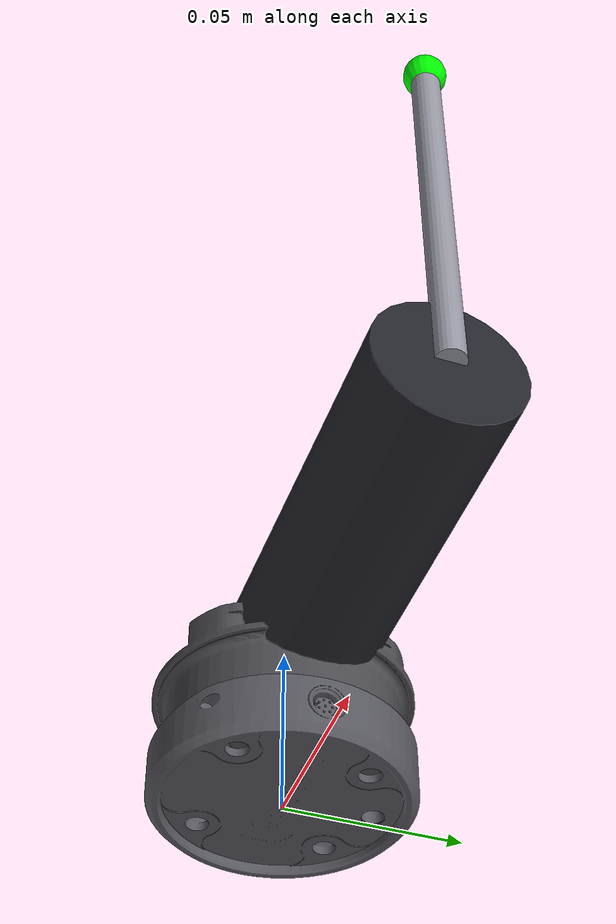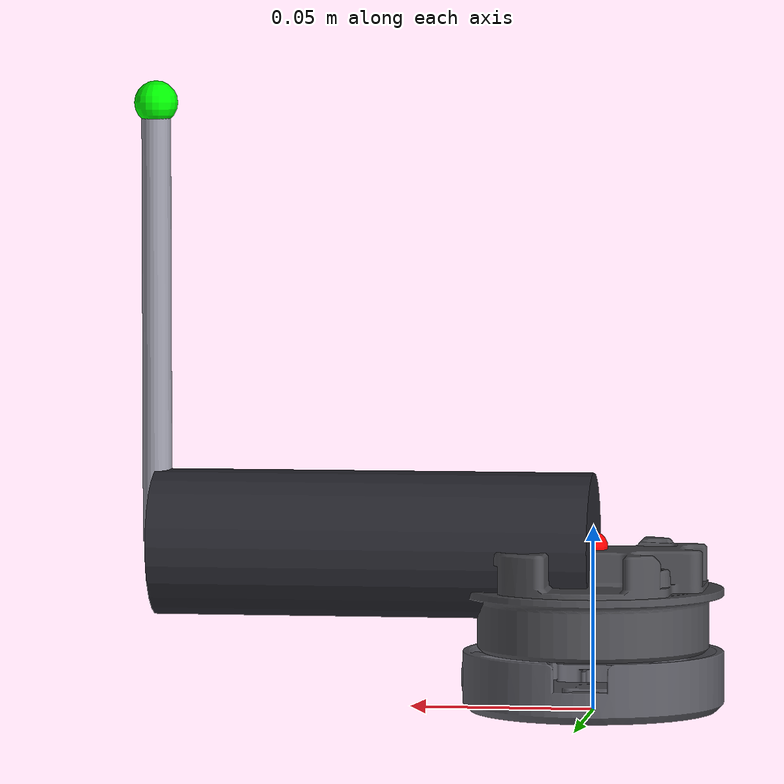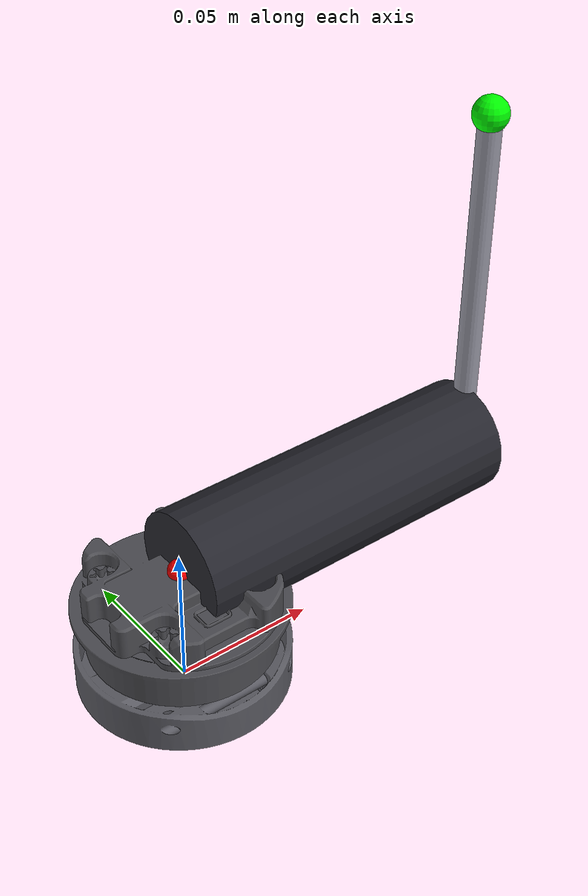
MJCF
<mujoco model="ur5e_pendulum_realrod">

  <default>
    <default class="pendulum">
      <!-- REAL measured hinge friction (see note above), NOT the 0.02/0.01
           placeholders the other two assets carry. -->
      <joint damping="0.0001" frictionloss="0.001"/>
      <geom contype="0" conaffinity="0" density="7850"/>
    </default>
  </default>

  <asset>
    <mesh name="toolchanger_robot_side_mesh" file="meshes/toolchanger_robot_side.stl"/>
    <mesh name="toolchanger_tool_side_mesh" file="meshes/toolchanger_tool_side.stl"/>
  </asset>

  <worldbody>
    <body name="pendulum_mount" pos="0 0 0">
      <geom name="toolchanger_robot_side" type="mesh" mesh="toolchanger_robot_side_mesh"
            pos="0 0 0.0025" mass="0.0606" class="pendulum" rgba="0.35 0.35 0.38 1"/>
      <!-- +90 deg about X maps the STL's own +Y plate normal to mount +Z, so
           the coupling face seats on the robot-side plate's outer face at
           z = 0.0161 and the stack ends at z = 0.0445. -->
      <geom name="toolchanger_tool_side" type="mesh" mesh="toolchanger_tool_side_mesh"
            pos="0 0 0.0161" quat="0.70710678 0.70710678 0 0"
            mass="0.1394" class="pendulum" rgba="0.3 0.3 0.32 1"/>

      <body name="pendulum_hub" pos="0 0 0.0445">
        <geom name="pendulum_hub_geom" type="cylinder" fromto="0 0 0  0.12 0 0" size="0.020"
              class="pendulum" rgba="0.15 0.15 0.18 1" mass="0.05"/>

        <joint name="pendulum_hinge" type="hinge" axis="1 0 0" pos="0 0 0"
               class="pendulum" range="-3.14159 3.14159" limited="false"/>
        <site name="pendulum_hinge_site" pos="0 0 0" size="0.004" rgba="1 0 0 1"/>

        <body name="pendulum_rod" pos="0.12 0 0">
          <geom name="pendulum_rod_geom" type="cylinder" fromto="0 0 0  0 0 0.12" size="0.004"
                class="pendulum" rgba="0.6 0.6 0.65 1"/>
          <site name="pendulum_tip_site" pos="0 0 0.12" size="0.006" rgba="0 1 0 1"/>
        </body>
      </body>
    </body>
  </worldbody>

  <sensor>
    <jointpos name="pendulum_angle_sensor" joint="pendulum_hinge"/>
  </sensor>
</mujoco>
